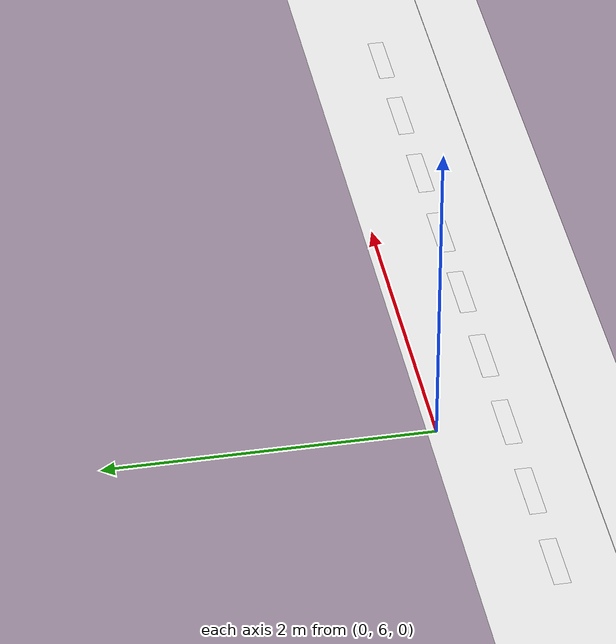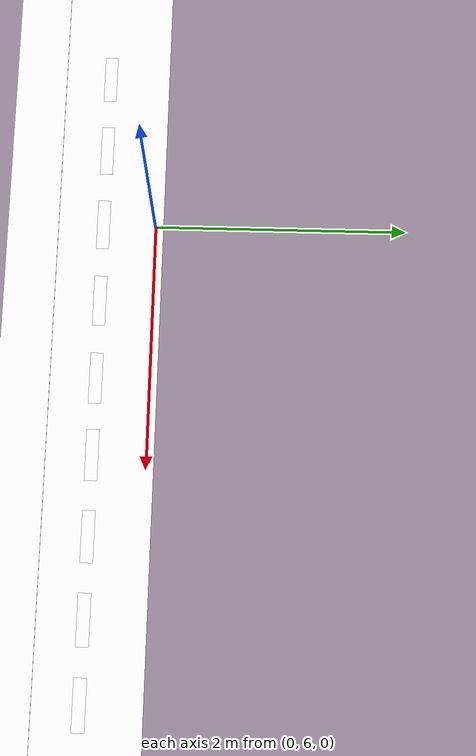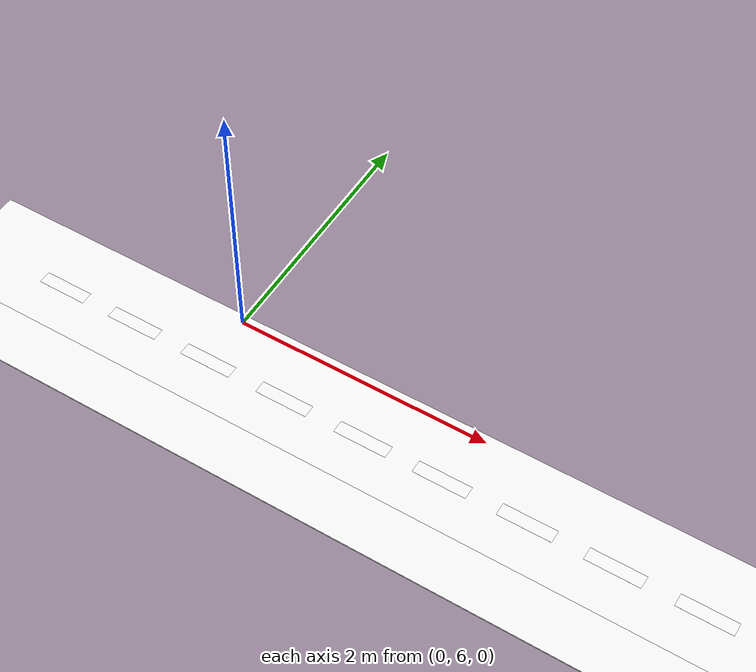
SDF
<sdf version="1.7">
 <world name="kookmin_xycar_track_cad_v4">
  <model name="white_line_cad_v4_001">
   <static>true</static>
   <pose>-0.5200 0.5100 0.0140 0 0 0</pose>
   <link name="white_line_cad_v4_001_surface">
    <visual name="visual">
     <cast_shadows>false</cast_shadows>
     <geometry><plane><normal>0 0 1</normal><size>17.5600 11.1000</size></plane></geometry>
     <material>
      <ambient>1 1 1 1</ambient>
      <diffuse>1 1 1 1</diffuse>
      <emissive>0.9490 0.9490 0.9255 1</emissive>
      <pbr>
       <metal>
        <albedo_map>file://media/materials/textures/kookmin_white_line_cad_v4_001.png</albedo_map>
        <roughness>1</roughness>
        <metalness>0</metalness>
       </metal>
      </pbr>
     </material>
    </visual>
   </link>
  </model>
  <model name="white_line_cad_v4_002">
   <static>true</static>
   <pose>-0.5250 0.5050 0.0142 0 0 0</pose>
   <link name="white_line_cad_v4_002_surface">
    <visual name="visual">
     <cast_shadows>false</cast_shadows>
     <geometry><plane><normal>0 0 1</normal><size>15.8700 9.4300</size></plane></geometry>
     <material>
      <ambient>1 1 1 1</ambient>
      <diffuse>1 1 1 1</diffuse>
      <emissive>0.9490 0.9490 0.9255 1</emissive>
      <pbr>
       <metal>
        <albedo_map>file://media/materials/textures/kookmin_white_line_cad_v4_002.png</albedo_map>
        <roughness>1</roughness>
        <metalness>0</metalness>
       </metal>
      </pbr>
     </material>
    </visual>
   </link>
  </model>
  <model name="yellow_centerline_dash_010">
   <static>true</static>
   <pose>-1.2750 5.5800 0.0184 0 0 0</pose>
   <link name="yellow_centerline_dash_010_surface">
    <visual name="visual">
     <cast_shadows>false</cast_shadows>
     <geometry><plane><normal>0 0 1</normal><size>0.3900 0.1000</size></plane></geometry>
     <material>
      <ambient>1 1 1 1</ambient>
      <diffuse>1 1 1 1</diffuse>
      <emissive>1.0000 0.7686 0.0471 1</emissive>
      <pbr>
       <metal>
        <albedo_map>file://media/materials/textures/kookmin_yellow_centerline_dash_010.png</albedo_map>
        <roughness>1</roughness>
        <metalness>0</metalness>
       </metal>
      </pbr>
     </material>
    </visual>
   </link>
  </model>
  <model name="yellow_centerline_dash_011">
   <static>true</static>
   <pose>-0.6450 5.5800 0.0185 0 0 0</pose>
   <link name="yellow_centerline_dash_011_surface">
    <visual name="visual">
     <cast_shadows>false</cast_shadows>
     <geometry><plane><normal>0 0 1</normal><size>0.4100 0.1000</size></plane></geometry>
     <material>
      <ambient>1 1 1 1</ambient>
      <diffuse>1 1 1 1</diffuse>
      <emissive>1.0000 0.7686 0.0471 1</emissive>
      <pbr>
       <metal>
        <albedo_map>file://media/materials/textures/kookmin_yellow_centerline_dash_011.png</albedo_map>
        <roughness>1</roughness>
        <metalness>0</metalness>
       </metal>
      </pbr>
     </material>
    </visual>
   </link>
  </model>
  <model name="yellow_centerline_dash_012">
   <static>true</static>
   <pose>-0.0050 5.5800 0.0185 0 0 0</pose>
   <link name="yellow_centerline_dash_012_surface">
    <visual name="visual">
     <cast_shadows>false</cast_shadows>
     <geometry><plane><normal>0 0 1</normal><size>0.4100 0.1000</size></plane></geometry>
     <material>
      <ambient>1 1 1 1</ambient>
      <diffuse>1 1 1 1</diffuse>
      <emissive>1.0000 0.7686 0.0471 1</emissive>
      <pbr>
       <metal>
        <albedo_map>file://media/materials/textures/kookmin_yellow_centerline_dash_012.png</albedo_map>
        <roughness>1</roughness>
        <metalness>0</metalness>
       </metal>
      </pbr>
     </material>
    </visual>
   </link>
  </model>
  <model name="yellow_centerline_dash_013">
   <static>true</static>
   <pose>0.6350 5.5800 0.0186 0 0 0</pose>
   <link name="yellow_centerline_dash_013_surface">
    <visual name="visual">
     <cast_shadows>false</cast_shadows>
     <geometry><plane><normal>0 0 1</normal><size>0.4100 0.1000</size></plane></geometry>
     <material>
      <ambient>1 1 1 1</ambient>
      <diffuse>1 1 1 1</diffuse>
      <emissive>1.0000 0.7686 0.0471 1</emissive>
      <pbr>
       <metal>
        <albedo_map>file://media/materials/textures/kookmin_yellow_centerline_dash_013.png</albedo_map>
        <roughness>1</roughness>
        <metalness>0</metalness>
       </metal>
      </pbr>
     </material>
    </visual>
   </link>
  </model>
  <model name="yellow_centerline_dash_014">
   <static>true</static>
   <pose>1.2750 5.5800 0.0186 0 0 0</pose>
   <link name="yellow_centerline_dash_014_surface">
    <visual name="visual">
     <cast_shadows>false</cast_shadows>
     <geometry><plane><normal>0 0 1</normal><size>0.4100 0.1000</size></plane></geometry>
     <material>
      <ambient>1 1 1 1</ambient>
      <diffuse>1 1 1 1</diffuse>
      <emissive>1.0000 0.7686 0.0471 1</emissive>
      <pbr>
       <metal>
        <albedo_map>file://media/materials/textures/kookmin_yellow_centerline_dash_014.png</albedo_map>
        <roughness>1</roughness>
        <metalness>0</metalness>
       </metal>
      </pbr>
     </material>
    </visual>
   </link>
  </model>
  <model name="yellow_centerline_dash_015">
   <static>true</static>
   <pose>1.8950 5.5800 0.0187 0 0 0</pose>
   <link name="yellow_centerline_dash_015_surface">
    <visual name="visual">
     <cast_shadows>false</cast_shadows>
     <geometry><plane><normal>0 0 1</normal><size>0.4100 0.1000</size></plane></geometry>
     <material>
      <ambient>1 1 1 1</ambient>
      <diffuse>1 1 1 1</diffuse>
      <emissive>1.0000 0.7686 0.0471 1</emissive>
      <pbr>
       <metal>
        <albedo_map>file://media/materials/textures/kookmin_yellow_centerline_dash_015.png</albedo_map>
        <roughness>1</roughness>
        <metalness>0</metalness>
       </metal>
      </pbr>
     </material>
    </visual>
   </link>
  </model>
  <model name="yellow_centerline_dash_016">
   <static>true</static>
   <pose>2.5350 5.5800 0.0187 0 0 0</pose>
   <link name="yellow_centerline_dash_016_surface">
    <visual name="visual">
     <cast_shadows>false</cast_shadows>
     <geometry><plane><normal>0 0 1</normal><size>0.4100 0.1000</size></plane></geometry>
     <material>
      <ambient>1 1 1 1</ambient>
      <diffuse>1 1 1 1</diffuse>
      <emissive>1.0000 0.7686 0.0471 1</emissive>
      <pbr>
       <metal>
        <albedo_map>file://media/materials/textures/kookmin_yellow_centerline_dash_016.png</albedo_map>
        <roughness>1</roughness>
        <metalness>0</metalness>
       </metal>
      </pbr>
     </material>
    </visual>
   </link>
  </model>
  <model name="yellow_centerline_dash_017">
   <static>true</static>
   <pose>3.1750 5.5800 0.0188 0 0 0</pose>
   <link name="yellow_centerline_dash_017_surface">
    <visual name="visual">
     <cast_shadows>false</cast_shadows>
     <geometry><plane><normal>0 0 1</normal><size>0.4100 0.1000</size></plane></geometry>
     <material>
      <ambient>1 1 1 1</ambient>
      <diffuse>1 1 1 1</diffuse>
      <emissive>1.0000 0.7686 0.0471 1</emissive>
      <pbr>
       <metal>
        <albedo_map>file://media/materials/textures/kookmin_yellow_centerline_dash_017.png</albedo_map>
        <roughness>1</roughness>
        <metalness>0</metalness>
       </metal>
      </pbr>
     </material>
    </visual>
   </link>
  </model>
  <model name="yellow_centerline_dash_018">
   <static>true</static>
   <pose>3.8150 5.5800 0.0188 0 0 0</pose>
   <link name="yellow_centerline_dash_018_surface">
    <visual name="visual">
     <cast_shadows>false</cast_shadows>
     <geometry><plane><normal>0 0 1</normal><size>0.4100 0.1000</size></plane></geometry>
     <material>
      <ambient>1 1 1 1</ambient>
      <diffuse>1 1 1 1</diffuse>
      <emissive>1.0000 0.7686 0.0471 1</emissive>
      <pbr>
       <metal>
        <albedo_map>file://media/materials/textures/kookmin_yellow_centerline_dash_018.png</albedo_map>
        <roughness>1</roughness>
        <metalness>0</metalness>
       </metal>
      </pbr>
     </material>
    </visual>
   </link>
  </model>
 </world>
</sdf>
